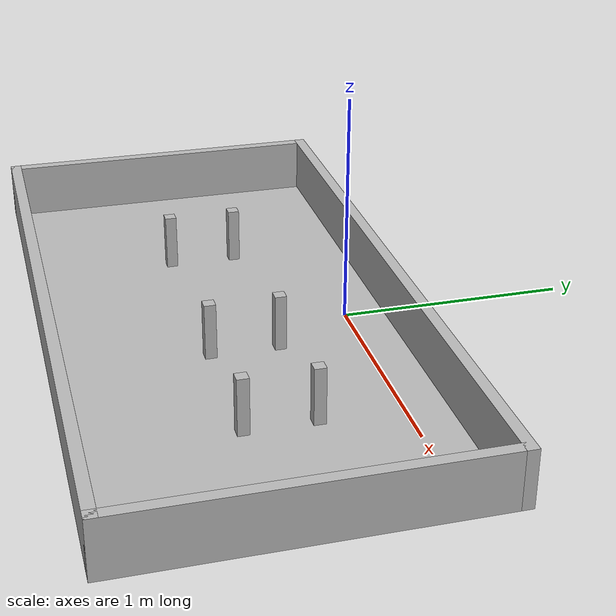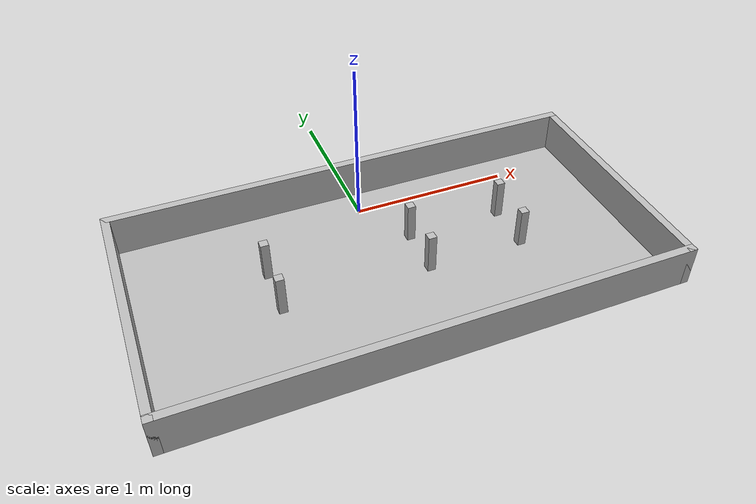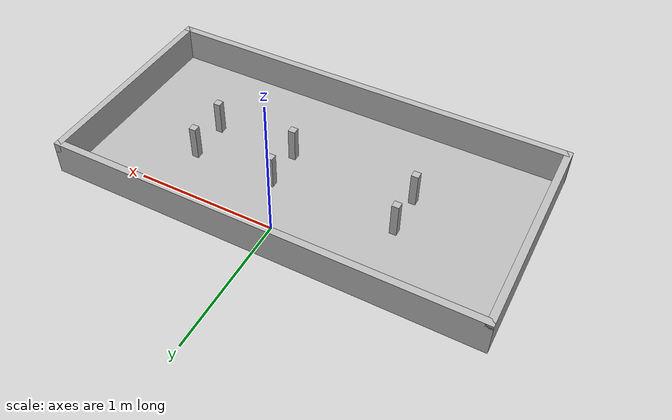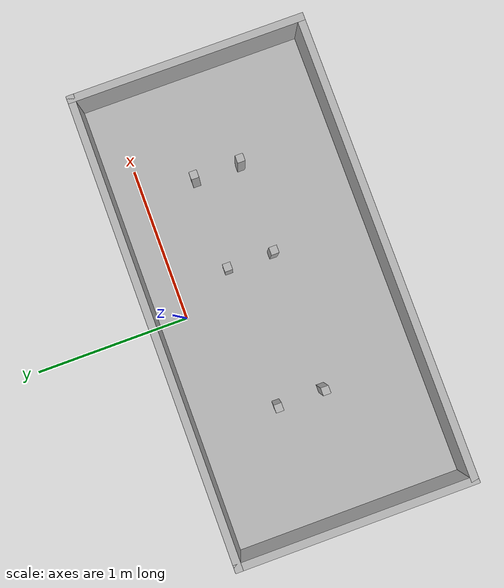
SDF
<sdf version="1.7">
 <world name="default">
  <light name="sun" type="directional">
   <pose>0 0 10 0 -0 0</pose>
   <diffuse>0.8 0.8 0.8 1</diffuse>
   <specular>0.2 0.2 0.2 1</specular>
   <attenuation>
    <range>1000</range>
    <constant>0.9</constant>
    <linear>0.01</linear>
    <quadratic>0.001</quadratic>
   </attenuation>
   <direction>-0.5 0.1 -0.9</direction>
   <spot><inner_angle>0</inner_angle><outer_angle>0</outer_angle><falloff>0</falloff></spot>
  </light>
  <model name="simulation_table_small">
   <static>1</static>
   <link name="floor">
    <collision name="collision">
     <geometry><plane><normal>0 0 1</normal><size>3 1.5</size></plane></geometry>
     <surface><friction><ode><mu>100</mu><mu2>50</mu2></ode></friction></surface>
    </collision>
    <visual name="visual">
     <cast_shadows>0</cast_shadows>
     <geometry><plane><normal>0 0 1</normal><size>3 1.5</size></plane></geometry>
     <material>
      <script>
       <uri>model://potholes_simple/materials/scripts/</uri>
       <uri>model://potholes_simple/materials/textures/</uri>
       <name>PotholesSimple/BackgroundPotholesSimple</name>
      </script>
     </material>
    </visual>
   </link>
   <link name="side_1">
    <pose relative_to="floor">0 0.75 0.125 1.5708 -0 0</pose>
    <collision name="collision">
     <geometry><box><size>3.05 0.25 0.05</size></box></geometry>
     <surface><friction><ode><mu>100</mu><mu2>50</mu2></ode></friction></surface>
    </collision>
    <visual name="visual">
     <cast_shadows>0</cast_shadows>
     <geometry><box><size>3.05 0.25 0.05</size></box></geometry>
    </visual>
   </link>
   <link name="side_2">
    <pose relative_to="floor">0 -0.75 0.125 1.5708 -0 0</pose>
    <collision name="collision">
     <geometry><box><size>3.05 0.25 0.05</size></box></geometry>
     <surface><friction><ode><mu>100</mu><mu2>50</mu2></ode></friction></surface>
    </collision>
    <visual name="visual">
     <cast_shadows>0</cast_shadows>
     <geometry><box><size>3.05 0.25 0.05</size></box></geometry>
    </visual>
   </link>
   <link name="side_3">
    <pose relative_to="floor">1.5 0 0.125 1.5708 -0 1.5708</pose>
    <collision name="collision">
     <geometry><box><size>1.55 0.25 0.05</size></box></geometry>
     <surface><friction><ode><mu>100</mu><mu2>50</mu2></ode></friction></surface>
    </collision>
    <visual name="visual">
     <cast_shadows>0</cast_shadows>
     <geometry><box><size>1.55 0.25 0.05</size></box></geometry>
    </visual>
   </link>
   <link name="side_4">
    <pose relative_to="floor">-1.5 0 0.125 1.5708 -0 1.5708</pose>
    <collision name="collision">
     <geometry><box><size>1.55 0.25 0.05</size></box></geometry>
     <surface><friction><ode><mu>100</mu><mu2>50</mu2></ode></friction></surface>
    </collision>
    <visual name="visual">
     <cast_shadows>0</cast_shadows>
     <geometry><box><size>1.55 0.25 0.05</size></box></geometry>
    </visual>
   </link>
   <link name="obstacle_1">
    <pose relative_to="floor">-0.7 0.2 0.125 0 -0 0</pose>
    <collision name="collision">
     <geometry><box><size>0.05 0.05 0.25</size></box></geometry>
     <surface><friction><ode><mu>100</mu><mu2>50</mu2></ode></friction></surface>
    </collision>
    <visual name="visual">
     <cast_shadows>0</cast_shadows>
     <geometry><box><size>0.05 0.05 0.25</size></box></geometry>
    </visual>
   </link>
   <link name="obstacle_2">
    <pose relative_to="floor">0.2 0.2 0.125 0 -0 0</pose>
    <collision name="collision">
     <geometry><box><size>0.05 0.05 0.25</size></box></geometry>
     <surface><friction><ode><mu>100</mu><mu2>50</mu2></ode></friction></surface>
    </collision>
    <visual name="visual">
     <cast_shadows>0</cast_shadows>
     <geometry><box><size>0.05 0.05 0.25</size></box></geometry>
    </visual>
   </link>
   <link name="obstacle_3">
    <pose relative_to="floor">0.8 0.2 0.125 0 -0 0</pose>
    <collision name="collision">
     <geometry><box><size>0.05 0.05 0.25</size></box></geometry>
     <surface><friction><ode><mu>100</mu><mu2>50</mu2></ode></friction></surface>
    </collision>
    <visual name="visual">
     <cast_shadows>0</cast_shadows>
     <geometry><box><size>0.05 0.05 0.25</size></box></geometry>
    </visual>
   </link>
   <link name="obstacle_4">
    <pose relative_to="floor">-0.7 -0.1 0.125 0 -0 0</pose>
    <collision name="collision">
     <geometry><box><size>0.05 0.05 0.25</size></box></geometry>
     <surface><friction><ode><mu>100</mu><mu2>50</mu2></ode></friction></surface>
    </collision>
    <visual name="visual">
     <cast_shadows>0</cast_shadows>
     <geometry><box><size>0.05 0.05 0.25</size></box></geometry>
    </visual>
   </link>
   <link name="obstacle_5">
    <pose relative_to="floor">0.2 -0.1 0.125 0 -0 0</pose>
    <collision name="collision">
     <geometry><box><size>0.05 0.05 0.25</size></box></geometry>
     <surface><friction><ode><mu>100</mu><mu2>50</mu2></ode></friction></surface>
    </collision>
    <visual name="visual">
     <cast_shadows>0</cast_shadows>
     <geometry><box><size>0.05 0.05 0.25</size></box></geometry>
    </visual>
   </link>
   <link name="obstacle_6">
    <pose relative_to="floor">0.8 -0.1 0.125 0 -0 0</pose>
    <collision name="collision">
     <geometry><box><size>0.05 0.05 0.25</size></box></geometry>
     <surface><friction><ode><mu>100</mu><mu2>50</mu2></ode></friction></surface>
    </collision>
    <visual name="visual">
     <cast_shadows>0</cast_shadows>
     <geometry><box><size>0.05 0.05 0.25</size></box></geometry>
    </visual>
   </link>
   <pose>0 -0.55 0 0 -0 0</pose>
  </model>
  <gravity>0 0 -9.8</gravity>
  <magnetic_field>6e-06 2.3e-05 -4.2e-05</magnetic_field>
  <atmosphere type="adiabatic"/>
  <physics type="ode">
   <max_step_size>0.001</max_step_size>
   <real_time_factor>1</real_time_factor>
   <real_time_update_rate>1000</real_time_update_rate>
  </physics>
  <scene><ambient>0.4 0.4 0.4 1</ambient><background>0.7 0.7 0.7 1</background><shadows>1</shadows></scene>
  <audio><device>default</device></audio>
  <spherical_coordinates>
   <surface_model>EARTH_WGS84</surface_model>
   <latitude_deg>0</latitude_deg>
   <longitude_deg>0</longitude_deg>
   <elevation>0</elevation>
   <heading_deg>0</heading_deg>
  </spherical_coordinates>
 </world>
</sdf>
